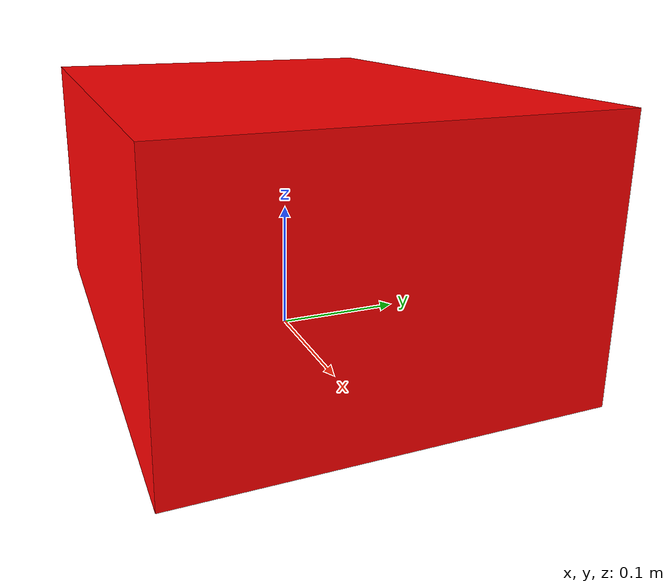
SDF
<?xml version="1.0" ?>
<sdf version="1.9">
  <model name="red_box">
    <link name="link">
      <inertial>
        <mass>1.0</mass>
        <inertia>
          <ixx>0.0108333333</ixx>
          <ixy>0.0</ixy>
          <ixz>0.0</ixz>
          <iyy>0.0166666667</iyy>
          <iyz>0.0</iyz>
          <izz>0.0208333333</izz>
        </inertia>
      </inertial>
      <collision name="collision">
        <pose>0 0 0.1 0 0 0</pose>
        <geometry>
          <box>
            <size>0.4 0.3 0.2</size>
          </box>
        </geometry>
        <surface>
          <friction>
            <ode>
              <mu>1.0</mu>
              <mu2>1.0</mu2>
            </ode>
          </friction>
        </surface>
      </collision>
      <visual name="visual">
        <geometry>
          <mesh>
            <uri>meshes/red_box.dae</uri>
          </mesh>
        </geometry>
      </visual>
    </link>
  </model>
</sdf>
